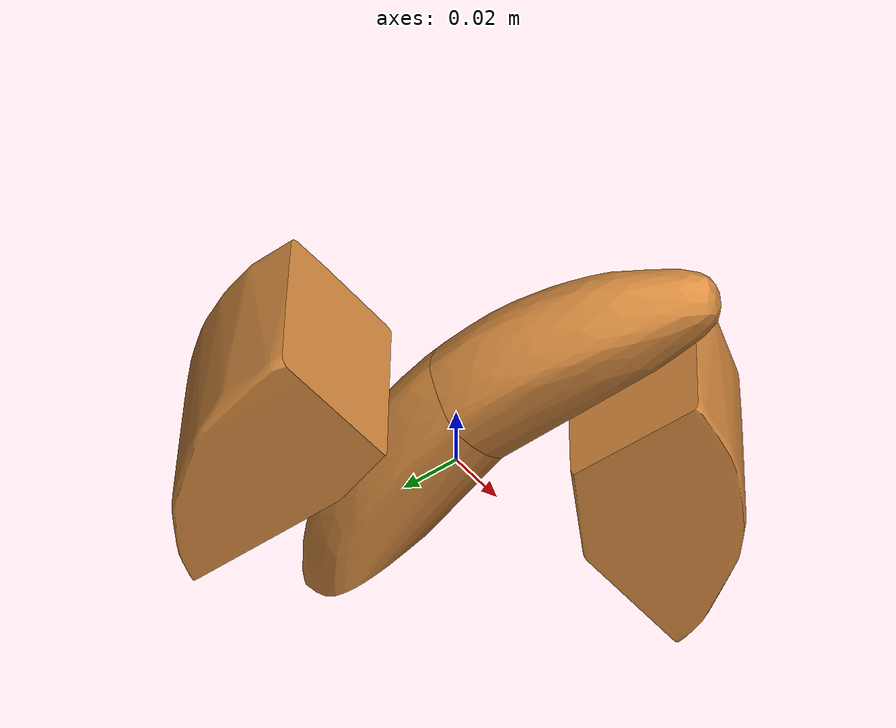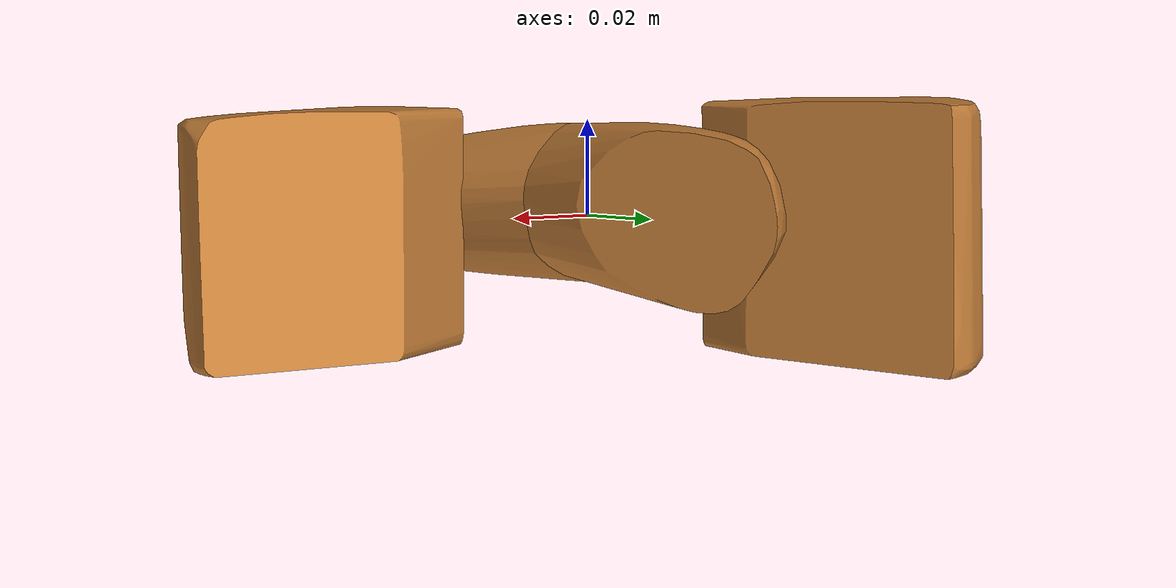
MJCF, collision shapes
<mujoco model="mustard_bottle">
  <compiler angle="radian"/>

  <asset>
    <material name="object" rgba="0.85 0.55 0.25 1"/>
    <mesh name="object_visual_mesh" file="source/top_watertight_tiny.obj"/>
    <mesh name="object_collision_mesh_000" file="collision/hull_000.obj"/>
    <mesh name="object_collision_mesh_001" file="collision/hull_001.obj"/>
    <mesh name="object_collision_mesh_002" file="collision/hull_002.obj"/>
    <mesh name="object_collision_mesh_003" file="collision/hull_003.obj"/>
  </asset>

  <worldbody>
    <body name="object">
      <inertial pos="-0.000969788 -0.00208719 -0.0057025" quat="0.833585 -0.000973945 0.00353588 0.552379" mass="0.24875" diaginertia="0.000674143 0.000587465 0.000173317"/>
      <joint name="object_joint" type="free" damping="1e-05 1e-05 1e-05"/>
      <geom name="object_visual" type="mesh" contype="0" conaffinity="0" mass="0" material="object" rgba="1 0.423529 0.0392157 1" mesh="object_visual_mesh"/>
      <geom name="object_collision" type="mesh" condim="6" friction="0.2" mass="0" material="object" mesh="object_collision_mesh_000"/>
      <geom name="object_collision_001" type="mesh" condim="6" friction="0.2" mass="0" material="object" mesh="object_collision_mesh_001"/>
      <geom name="object_collision_002" type="mesh" condim="6" friction="0.2" mass="0" material="object" mesh="object_collision_mesh_002"/>
      <geom name="object_collision_003" type="mesh" condim="6" friction="0.2" mass="0" material="object" mesh="object_collision_mesh_003"/>
    </body>
  </worldbody>
</mujoco>
